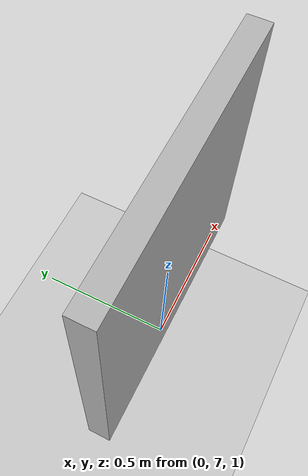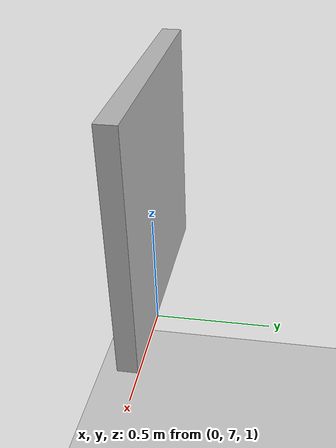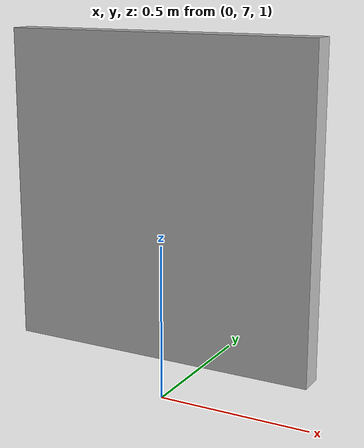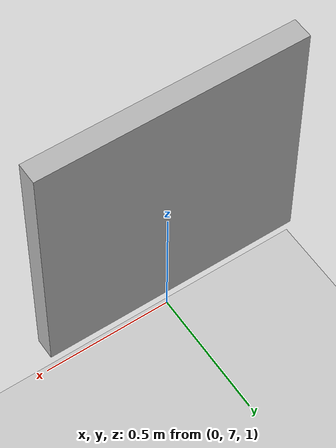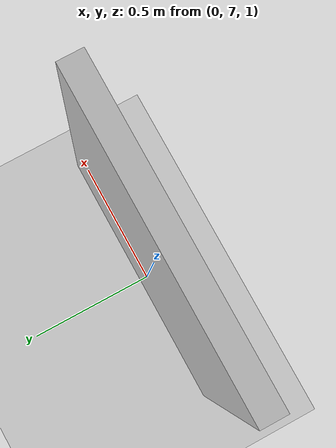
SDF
<sdf version="1.6">
 <world name="default">
  <model name="ground_plane">
   <static>1</static>
   <link name="link">
    <collision name="collision">
     <geometry><plane><normal>0 0 1</normal><size>100 100</size></plane></geometry>
     <surface>
      <contact><collide_bitmask>65535</collide_bitmask></contact>
      <friction><ode><mu>100</mu><mu2>50</mu2></ode></friction>
     </surface>
    </collision>
    <visual name="visual">
     <cast_shadows>0</cast_shadows>
     <geometry><plane><normal>0 0 1</normal><size>100 100</size></plane></geometry>
     <material>
      <script><uri>file://media/materials/scripts/gazebo.material</uri><name>Gazebo/Grey</name></script>
     </material>
    </visual>
   </link>
  </model>
  <light name="sun" type="directional">
   <pose>0 0 10 0 -0 0</pose>
   <diffuse>0.8 0.8 0.8 1</diffuse>
   <specular>0.2 0.2 0.2 1</specular>
   <attenuation>
    <range>1000</range>
    <constant>0.9</constant>
    <linear>0.01</linear>
    <quadratic>0.001</quadratic>
   </attenuation>
   <direction>-0.5 0.1 -0.9</direction>
  </light>
  <gravity>0 0 -9.8</gravity>
  <magnetic_field>6e-06 2.3e-05 -4.2e-05</magnetic_field>
  <atmosphere type="adiabatic"/>
  <physics name="default_physics" default="0" type="ode">
   <max_step_size>0.001</max_step_size>
   <real_time_factor>1</real_time_factor>
   <real_time_update_rate>1000</real_time_update_rate>
  </physics>
  <scene><ambient>0.4 0.4 0.4 1</ambient><background>0.7 0.7 0.7 1</background><shadows>1</shadows></scene>
  <spherical_coordinates>
   <surface_model>EARTH_WGS84</surface_model>
   <latitude_deg>0</latitude_deg>
   <longitude_deg>0</longitude_deg>
   <elevation>0</elevation>
   <heading_deg>0</heading_deg>
  </spherical_coordinates>
  <model name="Checkerboard">
   <pose>0 7 1.65 0 -0 0</pose>
   <static>1</static>
   <link name="body">
    <visual name="visual">
     <geometry><mesh><uri>model://chess_plane/meshes/chess_plane.dae</uri></mesh></geometry>
    </visual>
    <collision name="collision"><geometry><box><size>0.25 0.25 0.05</size></box></geometry></collision>
   </link>
  </model>
  <light name="user_spot_light_0" type="spot">
   <pose>-0.02227 1.06016 1 0 -0 0</pose>
   <diffuse>0.5 0.5 0.5 1</diffuse>
   <specular>0.1 0.1 0.1 1</specular>
   <direction>0 0 -1</direction>
   <attenuation>
    <range>20</range>
    <constant>0.1</constant>
    <linear>0.01</linear>
    <quadratic>0.001</quadratic>
   </attenuation>
   <cast_shadows>0</cast_shadows>
   <spot><inner_angle>0.6</inner_angle><outer_angle>1.5</outer_angle><falloff>1</falloff></spot>
  </light>
 </world>
</sdf>
